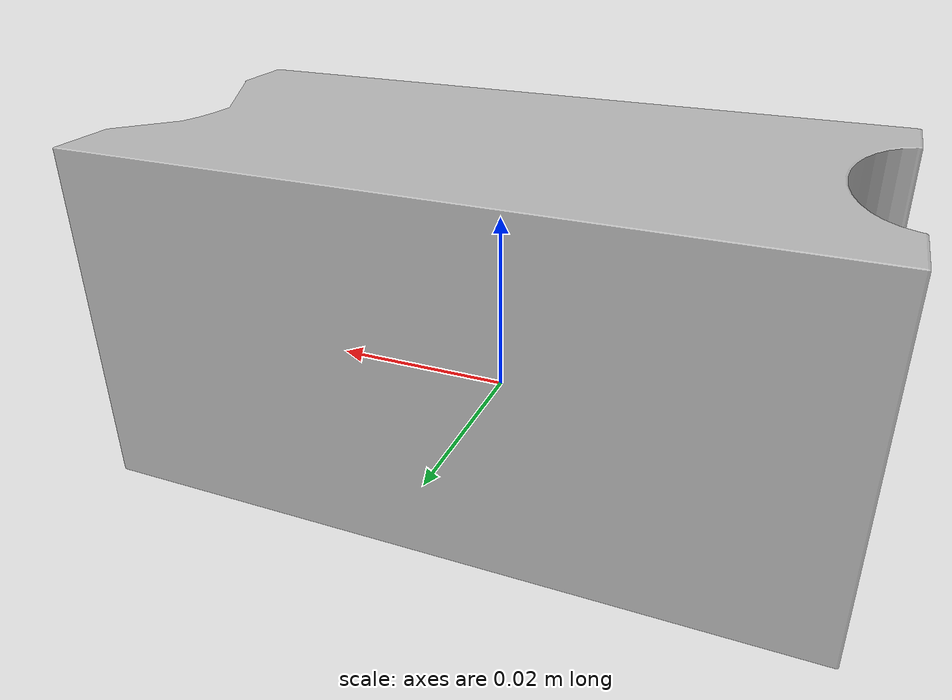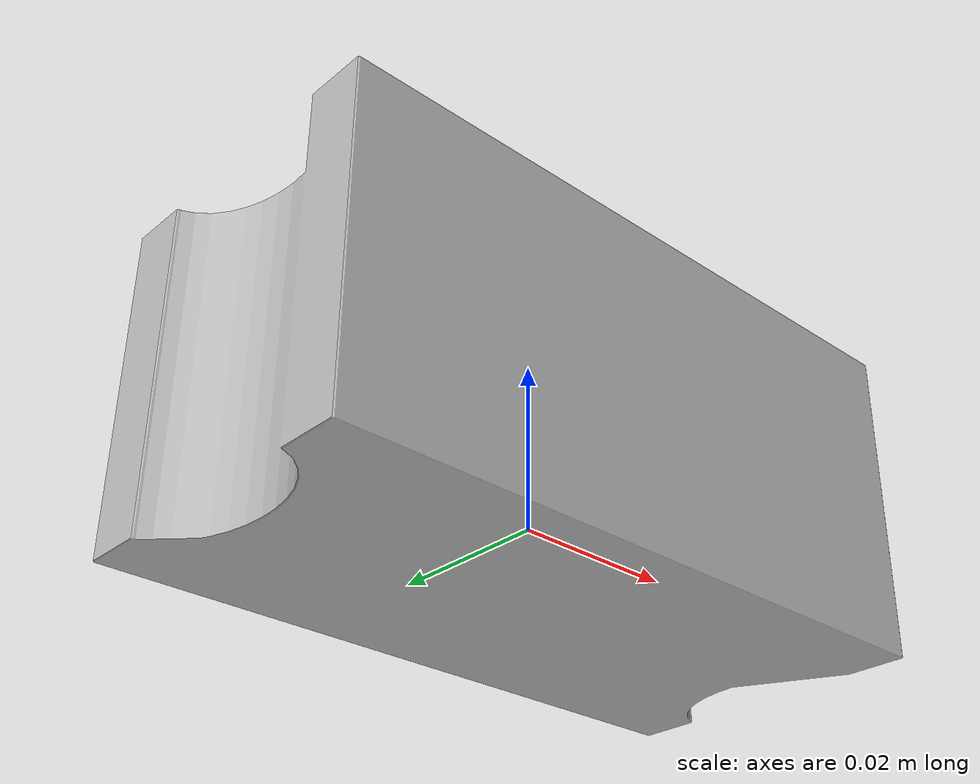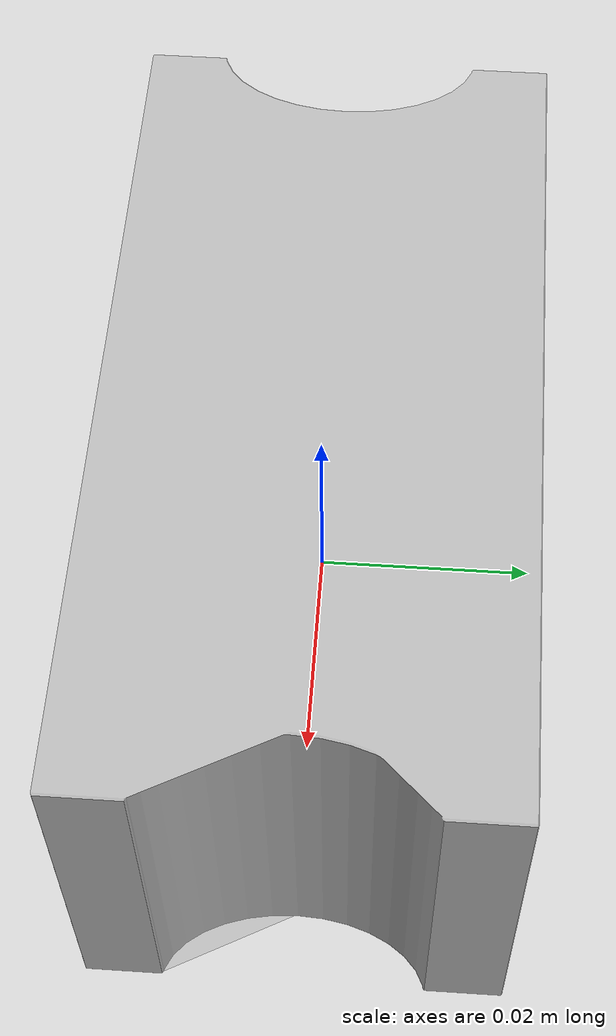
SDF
<?xml version="1.0"?>
<sdf version="1.6">
  <model name="brick">
    <static>true</static>
    <link name="link">
      <visual name="visual">
        <geometry>
          <mesh>
            <uri>model://brick/meshes/brick.obj</uri>
          </mesh>
        </geometry>
      </visual>
      <collision name="collision">
        <geometry>
          <mesh>
            <uri>model://brick/meshes/brick.obj</uri>
          </mesh>
        </geometry>
      </collision>
    </link>
  </model>
</sdf>
